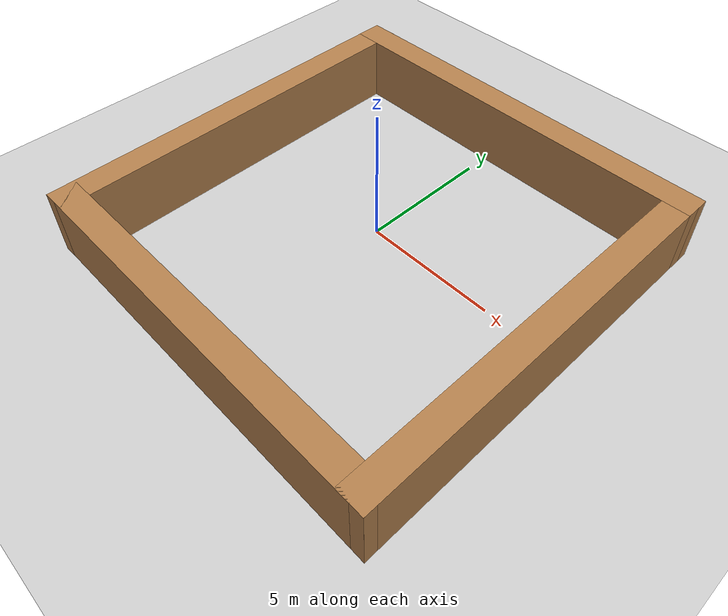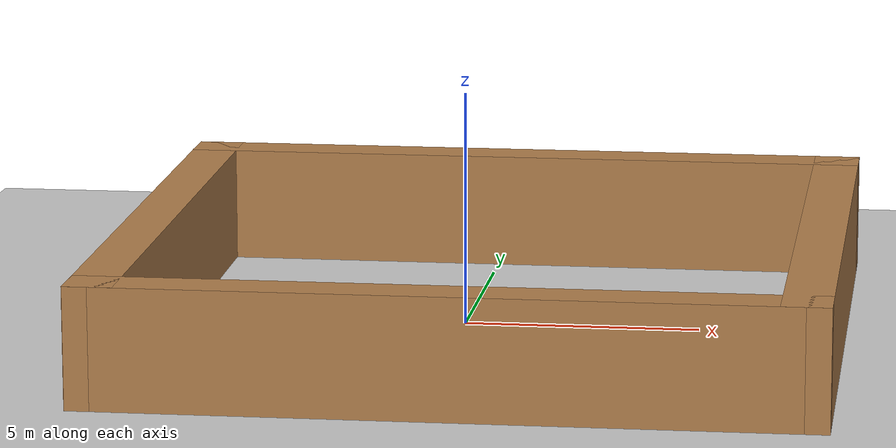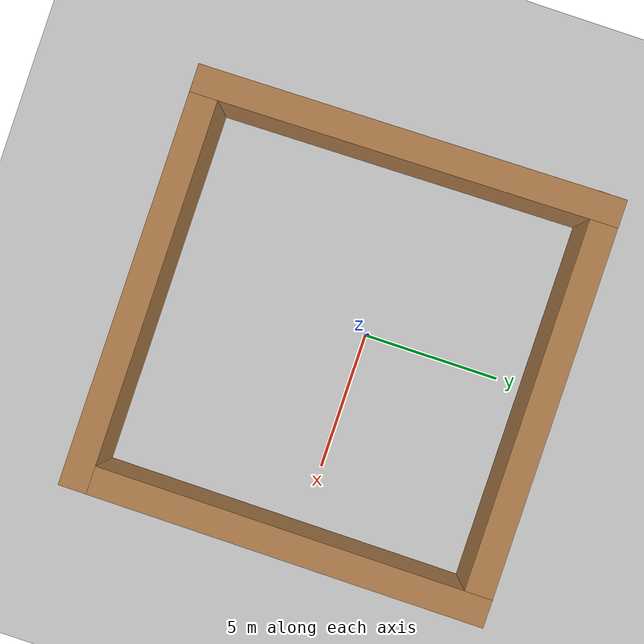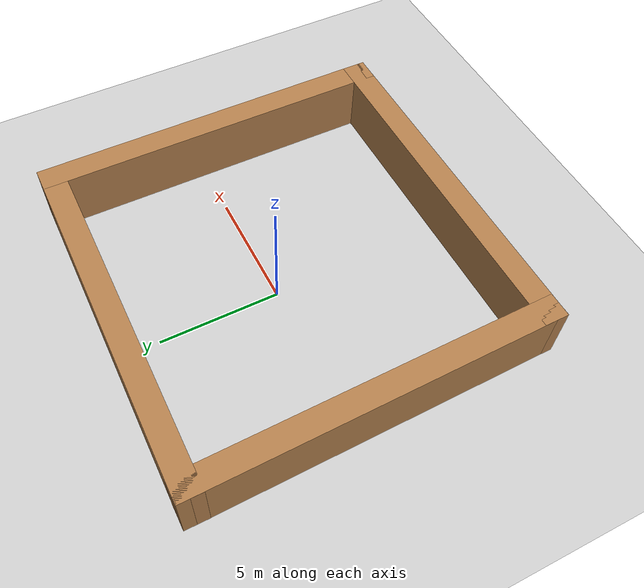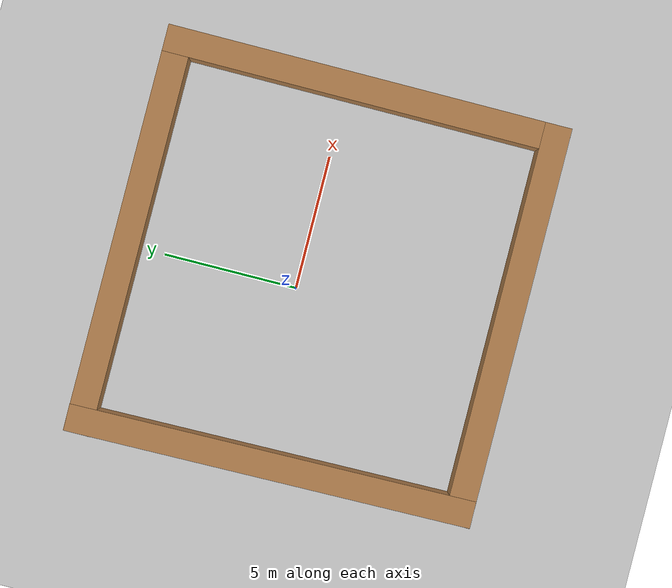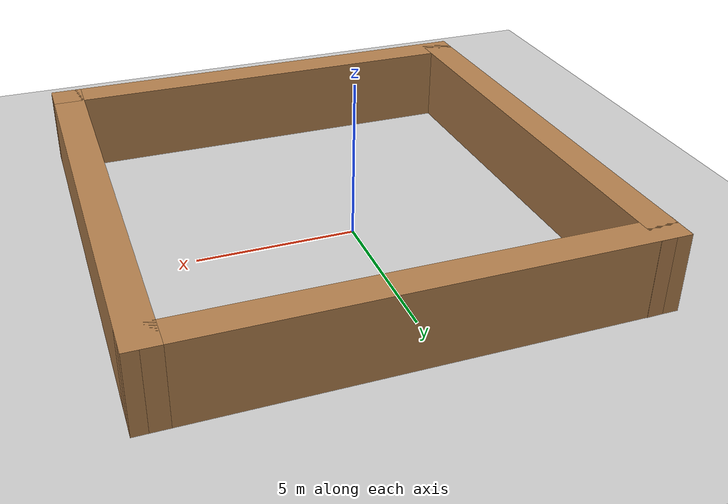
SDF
<sdf version="1.6">
 <world name="default">
  <light name="sun" type="directional">
   <pose>0 0 10 0 -0 0</pose>
   <diffuse>0.8 0.8 0.8 1</diffuse>
   <specular>0.1 0.1 0.1 1</specular>
   <attenuation>
    <range>1000</range>
    <constant>0.9</constant>
    <linear>0.01</linear>
    <quadratic>0.001</quadratic>
   </attenuation>
   <direction>-0.5 0.5 -1</direction>
  </light>
  <model name="ground_plane">
   <static>1</static>
   <link name="link">
    <collision name="collision">
     <geometry><plane><normal>0 0 1</normal><size>100 100</size></plane></geometry>
     <surface><friction><ode><mu>100</mu><mu2>50</mu2></ode></friction></surface>
    </collision>
    <visual name="visual">
     <cast_shadows>0</cast_shadows>
     <geometry><plane><normal>0 0 1</normal><size>100 100</size></plane></geometry>
     <material>
      <script><uri>file://media/materials/scripts/gazebo.material</uri><name>Gazebo/Grey</name></script>
     </material>
    </visual>
   </link>
  </model>
  <gravity>0 0 -9.8</gravity>
  <magnetic_field>6e-06 2.3e-05 -4.2e-05</magnetic_field>
  <atmosphere type="adiabatic"/>
  <physics name="default_physics" default="0" type="ode">
   <max_step_size>0.001</max_step_size>
   <real_time_factor>1</real_time_factor>
   <real_time_update_rate>1000</real_time_update_rate>
  </physics>
  <scene><ambient>0.4 0.4 0.4 1</ambient><background>0.7 0.7 0.7 1</background><shadows>1</shadows></scene>
  <spherical_coordinates>
   <surface_model>EARTH_WGS84</surface_model>
   <latitude_deg>0</latitude_deg>
   <longitude_deg>0</longitude_deg>
   <elevation>0</elevation>
   <heading_deg>0</heading_deg>
  </spherical_coordinates>
  <model name="square">
   <pose>0.531276 -0.6925 0 0 -0 0</pose>
   <link name="Wall_0">
    <collision name="Wall_0_Collision">
     <geometry><box><size>15.1745 1 2.5</size></box></geometry>
     <pose>0 0 1.25 0 -0 0</pose>
    </collision>
    <visual name="Wall_0_Visual">
     <pose>0 0 1.25 0 -0 0</pose>
     <geometry><box><size>15.1745 1 2.5</size></box></geometry>
     <material>
      <script><uri>file://media/materials/scripts/gazebo.material</uri><name>Gazebo/Wood</name></script>
      <ambient>1 1 1 1</ambient>
     </material>
    </visual>
    <pose>-7.01278 0 0 0 -0 1.58512</pose>
   </link>
   <link name="Wall_3">
    <collision name="Wall_3_Collision">
     <geometry><box><size>14.9836 1 2.5</size></box></geometry>
     <pose>0 0 1.25 0 -0 0</pose>
    </collision>
    <visual name="Wall_3_Visual">
     <pose>0 0 1.25 0 -0 0</pose>
     <geometry><box><size>14.9836 1 2.5</size></box></geometry>
     <material>
      <script><uri>file://media/materials/scripts/gazebo.material</uri><name>Gazebo/Wood</name></script>
      <ambient>1 1 1 1</ambient>
     </material>
    </visual>
    <pose>0.080724 -7.0865 0 0 -0 0</pose>
   </link>
   <link name="Wall_4">
    <collision name="Wall_4_Collision">
     <geometry><box><size>15.1331 1 2.5</size></box></geometry>
     <pose>0 0 1.25 0 -0 0</pose>
    </collision>
    <visual name="Wall_4_Visual">
     <pose>0 0 1.25 0 -0 0</pose>
     <geometry><box><size>15.1331 1 2.5</size></box></geometry>
     <material>
      <script><uri>file://media/materials/scripts/gazebo.material</uri><name>Gazebo/Wood</name></script>
      <ambient>1 1 1 1</ambient>
     </material>
    </visual>
    <pose>7.09622 -0.02 0 0 -0 1.56747</pose>
   </link>
   <link name="Wall_5">
    <collision name="Wall_5_Collision">
     <geometry><box><size>15.2341 1 2.5</size></box></geometry>
     <pose>0 0 1.25 0 -0 0</pose>
    </collision>
    <visual name="Wall_5_Visual">
     <pose>0 0 1.25 0 -0 0</pose>
     <geometry><box><size>15.2341 1 2.5</size></box></geometry>
     <material>
      <script><uri>file://media/materials/scripts/gazebo.material</uri><name>Gazebo/Wood</name></script>
      <ambient>1 1 1 1</ambient>
     </material>
    </visual>
    <pose>0.002724 7.0665 0 0 -0 3.13878</pose>
   </link>
   <static>1</static>
  </model>
 </world>
</sdf>
